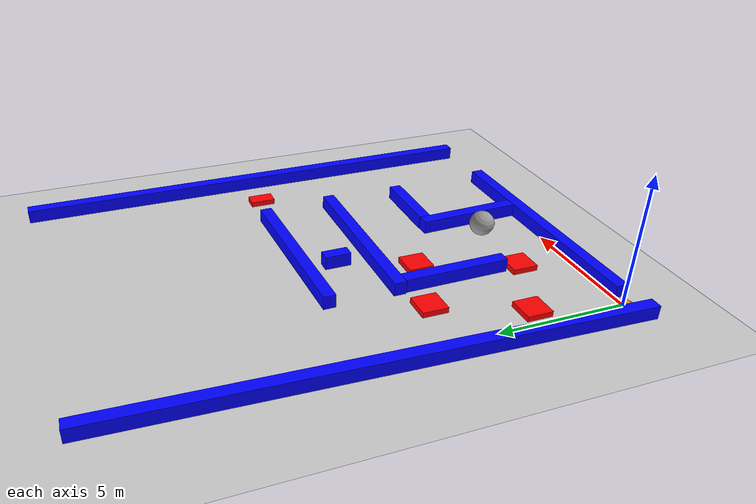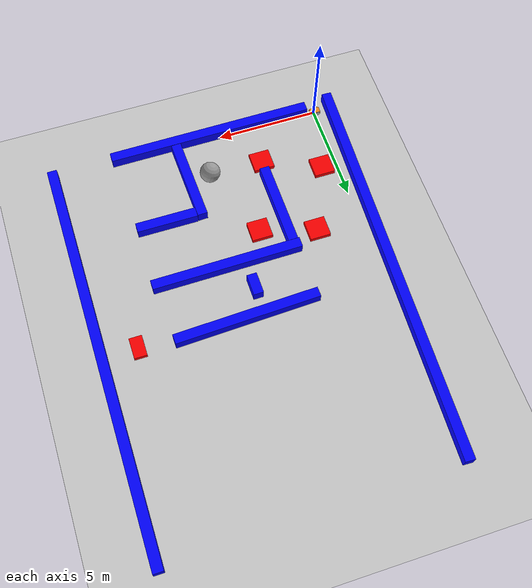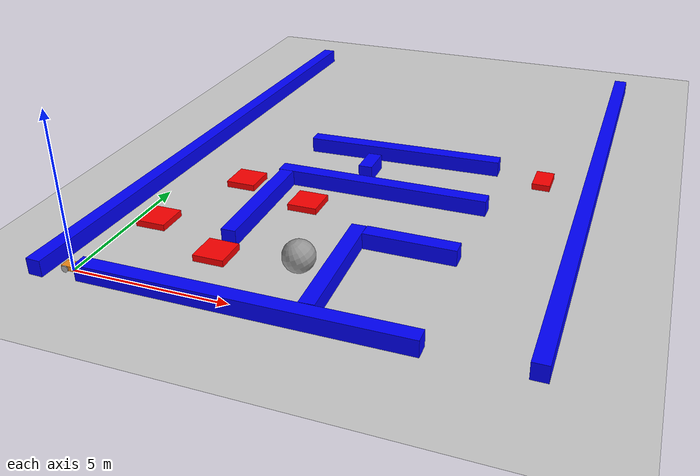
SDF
<sdf version="1.7">
 <world name="default">
  <model name="ground_plane">
   <static>1</static>
   <link name="link">
    <collision name="collision">
     <geometry><plane><normal>0 0 1</normal><size>100 100</size></plane></geometry>
     <surface>
      <contact><collide_bitmask>65535</collide_bitmask></contact>
      <friction><ode><mu>100</mu><mu2>50</mu2></ode></friction>
     </surface>
    </collision>
    <visual name="visual">
     <cast_shadows>0</cast_shadows>
     <geometry><plane><normal>0 0 1</normal><size>100 100</size></plane></geometry>
     <material>
      <script><uri>file://media/materials/scripts/gazebo.material</uri><name>Gazebo/Grey</name></script>
     </material>
    </visual>
   </link>
  </model>
  <model name="blue__wall">
   <link name="link_0">
    <inertial>
     <mass>3.38479</mass>
     <inertia><ixx>51.2617</ixx><ixy>0</ixy><ixz>0</ixz><iyy>0.142515</iyy><iyz>0</iyz><izz>51.2469</izz></inertia>
    </inertial>
    <visual name="visual">
     <geometry><box><size>0.47589 19.6362 0.528001</size></box></geometry>
     <material>
      <lighting>1</lighting>
      <script><uri>file://media/materials/scripts/gazebo.material</uri><name>Gazebo/Grey</name></script>
      <shader type="pixel"><normal_map>__default__</normal_map></shader>
      <ambient>0 0 1 0</ambient>
      <diffuse>0.7 0.7 0.7 1</diffuse>
      <specular>0.01 0.01 0.01 1</specular>
      <emissive>0 0 0 1</emissive>
     </material>
    </visual>
    <collision name="collision">
     <geometry><box><size>0.47589 19.6362 0.528001</size></box></geometry>
     <surface>
      <friction>
       <ode><mu>1</mu><mu2>1</mu2><fdir1>0 0 0</fdir1><slip1>0</slip1><slip2>0</slip2></ode>
       <torsional>
        <coefficient>1</coefficient>
        <patch_radius>0</patch_radius>
        <surface_radius>0</surface_radius>
        <use_patch_radius>1</use_patch_radius>
        <ode><slip>0</slip></ode>
       </torsional>
      </friction>
      <bounce><restitution_coefficient>0</restitution_coefficient><threshold>1e+06</threshold></bounce>
      <contact>
       <collide_without_contact>0</collide_without_contact>
       <collide_without_contact_bitmask>1</collide_without_contact_bitmask>
       <collide_bitmask>1</collide_bitmask>
       <ode>
        <soft_cfm>0</soft_cfm>
        <soft_erp>0.2</soft_erp>
        <kp>1e+13</kp>
        <kd>1</kd>
        <max_vel>0.01</max_vel>
        <min_depth>0</min_depth>
       </ode>
       <bullet>
        <split_impulse>1</split_impulse>
        <split_impulse_penetration_threshold>-0.01</split_impulse_penetration_threshold>
        <soft_cfm>0</soft_cfm>
        <soft_erp>0.2</soft_erp>
        <kp>1e+13</kp>
        <kd>1</kd>
       </bullet>
      </contact>
     </surface>
    </collision>
   </link>
   <static>0</static>
   <pose>-0.4804 9.22676 0.263996 0 -1.8e-05 -0.038056</pose>
  </model>
  <model name="blue__wall_clone_clone_clone">
   <link name="link_0">
    <inertial>
     <mass>3.38479</mass>
     <inertia><ixx>51.2617</ixx><ixy>0</ixy><ixz>0</ixz><iyy>0.142515</iyy><iyz>0</iyz><izz>51.2469</izz></inertia>
    </inertial>
    <visual name="visual">
     <geometry><box><size>0.47589 10.1039 0.528001</size></box></geometry>
     <material>
      <lighting>1</lighting>
      <script><uri>file://media/materials/scripts/gazebo.material</uri><name>Gazebo/Grey</name></script>
      <shader type="pixel"><normal_map>__default__</normal_map></shader>
      <ambient>0 0 1 0</ambient>
      <diffuse>0.7 0.7 0.7 1</diffuse>
      <specular>0.01 0.01 0.01 1</specular>
      <emissive>0 0 0 1</emissive>
     </material>
    </visual>
    <collision name="collision">
     <geometry><box><size>0.47589 10.1039 0.528001</size></box></geometry>
     <surface>
      <friction>
       <ode><mu>1</mu><mu2>1</mu2><fdir1>0 0 0</fdir1><slip1>0</slip1><slip2>0</slip2></ode>
       <torsional>
        <coefficient>1</coefficient>
        <patch_radius>0</patch_radius>
        <surface_radius>0</surface_radius>
        <use_patch_radius>1</use_patch_radius>
        <ode><slip>0</slip></ode>
       </torsional>
      </friction>
      <bounce><restitution_coefficient>0</restitution_coefficient><threshold>1e+06</threshold></bounce>
      <contact>
       <collide_without_contact>0</collide_without_contact>
       <collide_without_contact_bitmask>1</collide_without_contact_bitmask>
       <collide_bitmask>1</collide_bitmask>
       <ode>
        <soft_cfm>0</soft_cfm>
        <soft_erp>0.2</soft_erp>
        <kp>1e+13</kp>
        <kd>1</kd>
        <max_vel>0.01</max_vel>
        <min_depth>0</min_depth>
       </ode>
       <bullet>
        <split_impulse>1</split_impulse>
        <split_impulse_penetration_threshold>-0.01</split_impulse_penetration_threshold>
        <soft_cfm>0</soft_cfm>
        <soft_erp>0.2</soft_erp>
        <kp>1e+13</kp>
        <kd>1</kd>
       </bullet>
      </contact>
     </surface>
    </collision>
   </link>
   <static>0</static>
   <pose>5.44581 -0.183339 0.264 0 -0 1.57294</pose>
  </model>
  <model name="blue__wall_clone_clone_clone_clone_clone">
   <link name="link_0">
    <inertial>
     <mass>3.38479</mass>
     <inertia><ixx>51.2617</ixx><ixy>0</ixy><ixz>0</ixz><iyy>0.142515</iyy><iyz>0</iyz><izz>51.2469</izz></inertia>
    </inertial>
    <visual name="visual">
     <geometry><box><size>0.47589 6.9172 0.528001</size></box></geometry>
     <material>
      <lighting>1</lighting>
      <script><uri>file://media/materials/scripts/gazebo.material</uri><name>Gazebo/Grey</name></script>
      <shader type="pixel"><normal_map>__default__</normal_map></shader>
      <ambient>0 0 1 0</ambient>
      <diffuse>0.7 0.7 0.7 1</diffuse>
      <specular>0.01 0.01 0.01 1</specular>
      <emissive>0 0 0 1</emissive>
     </material>
    </visual>
    <collision name="collision">
     <geometry><box><size>0.47589 6.9172 0.528001</size></box></geometry>
     <surface>
      <friction>
       <ode><mu>1</mu><mu2>1</mu2><fdir1>0 0 0</fdir1><slip1>0</slip1><slip2>0</slip2></ode>
       <torsional>
        <coefficient>1</coefficient>
        <patch_radius>0</patch_radius>
        <surface_radius>0</surface_radius>
        <use_patch_radius>1</use_patch_radius>
        <ode><slip>0</slip></ode>
       </torsional>
      </friction>
      <bounce><restitution_coefficient>0</restitution_coefficient><threshold>1e+06</threshold></bounce>
      <contact>
       <collide_without_contact>0</collide_without_contact>
       <collide_without_contact_bitmask>1</collide_without_contact_bitmask>
       <collide_bitmask>1</collide_bitmask>
       <ode>
        <soft_cfm>0</soft_cfm>
        <soft_erp>0.2</soft_erp>
        <kp>1e+13</kp>
        <kd>1</kd>
        <max_vel>0.01</max_vel>
        <min_depth>0</min_depth>
       </ode>
       <bullet>
        <split_impulse>1</split_impulse>
        <split_impulse_penetration_threshold>-0.01</split_impulse_penetration_threshold>
        <soft_cfm>0</soft_cfm>
        <soft_erp>0.2</soft_erp>
        <kp>1e+13</kp>
        <kd>1</kd>
       </bullet>
      </contact>
     </surface>
    </collision>
   </link>
   <static>0</static>
   <pose>6.70418 9.89001 0.264 0 -0 1.60482</pose>
  </model>
  <model name="blue__wall_clone_clone_clone_clone_clone_clone">
   <link name="link_0">
    <inertial>
     <mass>3.38479</mass>
     <inertia><ixx>51.2617</ixx><ixy>0</ixy><ixz>0</ixz><iyy>0.142515</iyy><iyz>0</iyz><izz>51.2469</izz></inertia>
    </inertial>
    <visual name="visual">
     <geometry><box><size>0.47589 7.22384 0.528001</size></box></geometry>
     <material>
      <lighting>1</lighting>
      <script><uri>file://media/materials/scripts/gazebo.material</uri><name>Gazebo/Grey</name></script>
      <shader type="pixel"><normal_map>__default__</normal_map></shader>
      <ambient>0 0 1 0</ambient>
      <diffuse>0.7 0.7 0.7 1</diffuse>
      <specular>0.01 0.01 0.01 1</specular>
      <emissive>0 0 0 1</emissive>
     </material>
    </visual>
    <collision name="collision">
     <geometry><box><size>0.47589 7.22384 0.528001</size></box></geometry>
     <surface>
      <friction>
       <ode><mu>1</mu><mu2>1</mu2><fdir1>0 0 0</fdir1><slip1>0</slip1><slip2>0</slip2></ode>
       <torsional>
        <coefficient>1</coefficient>
        <patch_radius>0</patch_radius>
        <surface_radius>0</surface_radius>
        <use_patch_radius>1</use_patch_radius>
        <ode><slip>0</slip></ode>
       </torsional>
      </friction>
      <bounce><restitution_coefficient>0</restitution_coefficient><threshold>1e+06</threshold></bounce>
      <contact>
       <collide_without_contact>0</collide_without_contact>
       <collide_without_contact_bitmask>1</collide_without_contact_bitmask>
       <collide_bitmask>1</collide_bitmask>
       <ode>
        <soft_cfm>0</soft_cfm>
        <soft_erp>0.2</soft_erp>
        <kp>1e+13</kp>
        <kd>1</kd>
        <max_vel>0.01</max_vel>
        <min_depth>0</min_depth>
       </ode>
       <bullet>
        <split_impulse>1</split_impulse>
        <split_impulse_penetration_threshold>-0.01</split_impulse_penetration_threshold>
        <soft_cfm>0</soft_cfm>
        <soft_erp>0.2</soft_erp>
        <kp>1e+13</kp>
        <kd>1</kd>
       </bullet>
      </contact>
     </surface>
    </collision>
   </link>
   <static>0</static>
   <pose>6.79896 7.11272 0.264 0 -0 1.57503</pose>
  </model>
  <model name="blue__wall_clone_clone_clone_clone_clone_clone_clone">
   <link name="link_0">
    <inertial>
     <mass>3.38479</mass>
     <inertia><ixx>51.2617</ixx><ixy>0</ixy><ixz>0</ixz><iyy>0.142515</iyy><iyz>0</iyz><izz>51.2469</izz></inertia>
    </inertial>
    <visual name="visual">
     <geometry><box><size>0.47589 4.18247 0.528001</size></box></geometry>
     <material>
      <lighting>1</lighting>
      <script><uri>file://media/materials/scripts/gazebo.material</uri><name>Gazebo/Grey</name></script>
      <shader type="pixel"><normal_map>__default__</normal_map></shader>
      <ambient>0 0 1 0</ambient>
      <diffuse>0.7 0.7 0.7 1</diffuse>
      <specular>0.01 0.01 0.01 1</specular>
      <emissive>0 0 0 1</emissive>
     </material>
    </visual>
    <collision name="collision">
     <geometry><box><size>0.47589 4.18247 0.528001</size></box></geometry>
     <surface>
      <friction>
       <ode><mu>1</mu><mu2>1</mu2><fdir1>0 0 0</fdir1><slip1>0</slip1><slip2>0</slip2></ode>
       <torsional>
        <coefficient>1</coefficient>
        <patch_radius>0</patch_radius>
        <surface_radius>0</surface_radius>
        <use_patch_radius>1</use_patch_radius>
        <ode><slip>0</slip></ode>
       </torsional>
      </friction>
      <bounce><restitution_coefficient>0</restitution_coefficient><threshold>1e+06</threshold></bounce>
      <contact>
       <collide_without_contact>0</collide_without_contact>
       <collide_without_contact_bitmask>1</collide_without_contact_bitmask>
       <collide_bitmask>1</collide_bitmask>
       <ode>
        <soft_cfm>0</soft_cfm>
        <soft_erp>0.2</soft_erp>
        <kp>1e+13</kp>
        <kd>1</kd>
        <max_vel>0.01</max_vel>
        <min_depth>0</min_depth>
       </ode>
       <bullet>
        <split_impulse>1</split_impulse>
        <split_impulse_penetration_threshold>-0.01</split_impulse_penetration_threshold>
        <soft_cfm>0</soft_cfm>
        <soft_erp>0.2</soft_erp>
        <kp>1e+13</kp>
        <kd>1</kd>
       </bullet>
      </contact>
     </surface>
    </collision>
   </link>
   <static>0</static>
   <pose>3.50966 4.76575 0.264 0 0 -3.13011</pose>
  </model>
  <model name="blue__wall_clone">
   <link name="link_0">
    <inertial>
     <mass>3.38479</mass>
     <inertia><ixx>51.2617</ixx><ixy>0</ixy><ixz>0</ixz><iyy>0.142515</iyy><iyz>0</iyz><izz>51.2469</izz></inertia>
    </inertial>
    <visual name="visual">
     <geometry><box><size>0.47589 19.6362 0.528001</size></box></geometry>
     <material>
      <lighting>1</lighting>
      <script><uri>file://media/materials/scripts/gazebo.material</uri><name>Gazebo/Grey</name></script>
      <shader type="pixel"><normal_map>__default__</normal_map></shader>
      <ambient>0 0 1 0</ambient>
      <diffuse>0.7 0.7 0.7 1</diffuse>
      <specular>0.01 0.01 0.01 1</specular>
      <emissive>0 0 0 1</emissive>
     </material>
    </visual>
    <collision name="collision">
     <geometry><box><size>0.47589 19.6362 0.528001</size></box></geometry>
     <surface>
      <friction>
       <ode><mu>1</mu><mu2>1</mu2><fdir1>0 0 0</fdir1><slip1>0</slip1><slip2>0</slip2></ode>
       <torsional>
        <coefficient>1</coefficient>
        <patch_radius>0</patch_radius>
        <surface_radius>0</surface_radius>
        <use_patch_radius>1</use_patch_radius>
        <ode><slip>0</slip></ode>
       </torsional>
      </friction>
      <bounce><restitution_coefficient>0</restitution_coefficient><threshold>1e+06</threshold></bounce>
      <contact>
       <collide_without_contact>0</collide_without_contact>
       <collide_without_contact_bitmask>1</collide_without_contact_bitmask>
       <collide_bitmask>1</collide_bitmask>
       <ode>
        <soft_cfm>0</soft_cfm>
        <soft_erp>0.2</soft_erp>
        <kp>1e+13</kp>
        <kd>1</kd>
        <max_vel>0.01</max_vel>
        <min_depth>0</min_depth>
       </ode>
       <bullet>
        <split_impulse>1</split_impulse>
        <split_impulse_penetration_threshold>-0.01</split_impulse_penetration_threshold>
        <soft_cfm>0</soft_cfm>
        <soft_erp>0.2</soft_erp>
        <kp>1e+13</kp>
        <kd>1</kd>
       </bullet>
      </contact>
     </surface>
    </collision>
   </link>
   <static>0</static>
   <pose>13.4295 9.53036 0.264001 0 1e-06 0</pose>
  </model>
  <model name="blue__wall_clone_clone_clone_clone_clone_clone_clone_clone">
   <link name="link_0">
    <inertial>
     <mass>3.38479</mass>
     <inertia><ixx>51.2617</ixx><ixy>0</ixy><ixz>0</ixz><iyy>0.142515</iyy><iyz>0</iyz><izz>51.2469</izz></inertia>
    </inertial>
    <visual name="visual">
     <geometry><box><size>0.47589 4.18247 0.528001</size></box></geometry>
     <material>
      <lighting>1</lighting>
      <script><uri>file://media/materials/scripts/gazebo.material</uri><name>Gazebo/Grey</name></script>
      <shader type="pixel"><normal_map>__default__</normal_map></shader>
      <ambient>0 0 1 0</ambient>
      <diffuse>0.7 0.7 0.7 1</diffuse>
      <specular>0.01 0.01 0.01 1</specular>
      <emissive>0 0 0 1</emissive>
     </material>
    </visual>
    <collision name="collision">
     <geometry><box><size>0.47589 4.18247 0.528001</size></box></geometry>
     <surface>
      <friction>
       <ode><mu>1</mu><mu2>1</mu2><fdir1>0 0 0</fdir1><slip1>0</slip1><slip2>0</slip2></ode>
       <torsional>
        <coefficient>1</coefficient>
        <patch_radius>0</patch_radius>
        <surface_radius>0</surface_radius>
        <use_patch_radius>1</use_patch_radius>
        <ode><slip>0</slip></ode>
       </torsional>
      </friction>
      <bounce><restitution_coefficient>0</restitution_coefficient><threshold>1e+06</threshold></bounce>
      <contact>
       <collide_without_contact>0</collide_without_contact>
       <collide_without_contact_bitmask>1</collide_without_contact_bitmask>
       <collide_bitmask>1</collide_bitmask>
       <ode>
        <soft_cfm>0</soft_cfm>
        <soft_erp>0.2</soft_erp>
        <kp>1e+13</kp>
        <kd>1</kd>
        <max_vel>0.01</max_vel>
        <min_depth>0</min_depth>
       </ode>
       <bullet>
        <split_impulse>1</split_impulse>
        <split_impulse_penetration_threshold>-0.01</split_impulse_penetration_threshold>
        <soft_cfm>0</soft_cfm>
        <soft_erp>0.2</soft_erp>
        <kp>1e+13</kp>
        <kd>1</kd>
       </bullet>
      </contact>
     </surface>
    </collision>
   </link>
   <static>0</static>
   <pose>7.20045 2.16332 0.263994 -0 -1.1e-05 -3.10777</pose>
  </model>
  <model name="blue__wall_clone_clone_clone_clone_clone_clone_clone_clone_clone_clone">
   <link name="link_0">
    <inertial>
     <mass>3.38479</mass>
     <inertia><ixx>51.2617</ixx><ixy>0</ixy><ixz>0</ixz><iyy>0.142515</iyy><iyz>0</iyz><izz>51.2469</izz></inertia>
    </inertial>
    <visual name="visual">
     <geometry><box><size>0.47589 2.9259 0.528001</size></box></geometry>
     <material>
      <lighting>1</lighting>
      <script><uri>file://media/materials/scripts/gazebo.material</uri><name>Gazebo/Grey</name></script>
      <shader type="pixel"><normal_map>__default__</normal_map></shader>
      <ambient>0 0 1 0</ambient>
      <diffuse>0.7 0.7 0.7 1</diffuse>
      <specular>0.01 0.01 0.01 1</specular>
      <emissive>0 0 0 1</emissive>
     </material>
    </visual>
    <collision name="collision">
     <geometry><box><size>0.47589 2.9259 0.528001</size></box></geometry>
     <surface>
      <friction>
       <ode><mu>1</mu><mu2>1</mu2><fdir1>0 0 0</fdir1><slip1>0</slip1><slip2>0</slip2></ode>
       <torsional>
        <coefficient>1</coefficient>
        <patch_radius>0</patch_radius>
        <surface_radius>0</surface_radius>
        <use_patch_radius>1</use_patch_radius>
        <ode><slip>0</slip></ode>
       </torsional>
      </friction>
      <bounce><restitution_coefficient>0</restitution_coefficient><threshold>1e+06</threshold></bounce>
      <contact>
       <collide_without_contact>0</collide_without_contact>
       <collide_without_contact_bitmask>1</collide_without_contact_bitmask>
       <collide_bitmask>1</collide_bitmask>
       <ode>
        <soft_cfm>0</soft_cfm>
        <soft_erp>0.2</soft_erp>
        <kp>1e+13</kp>
        <kd>1</kd>
        <max_vel>0.01</max_vel>
        <min_depth>0</min_depth>
       </ode>
       <bullet>
        <split_impulse>1</split_impulse>
        <split_impulse_penetration_threshold>-0.01</split_impulse_penetration_threshold>
        <soft_cfm>0</soft_cfm>
        <soft_erp>0.2</soft_erp>
        <kp>1e+13</kp>
        <kd>1</kd>
       </bullet>
      </contact>
     </surface>
    </collision>
   </link>
   <static>0</static>
   <pose>8.84694 4.03992 0.264001 0 -0 1.5659</pose>
  </model>
  <model name="blue__wall_clone_clone_clone_clone_clone_clone_clone_clone_clone_clone_0">
   <link name="link_0">
    <inertial>
     <mass>3.38479</mass>
     <inertia><ixx>51.2617</ixx><ixy>0</ixy><ixz>0</ixz><iyy>0.142515</iyy><iyz>0</iyz><izz>51.2469</izz></inertia>
    </inertial>
    <visual name="visual">
     <geometry><box><size>0.47589 1.03249 0.528001</size></box></geometry>
     <material>
      <lighting>1</lighting>
      <script><uri>file://media/materials/scripts/gazebo.material</uri><name>Gazebo/Grey</name></script>
      <shader type="pixel"><normal_map>__default__</normal_map></shader>
      <ambient>0 0 1 0</ambient>
      <diffuse>0.7 0.7 0.7 1</diffuse>
      <specular>0.01 0.01 0.01 1</specular>
      <emissive>0 0 0 1</emissive>
     </material>
    </visual>
    <collision name="collision">
     <geometry><box><size>0.47589 1.03249 0.528001</size></box></geometry>
     <surface>
      <friction>
       <ode><mu>1</mu><mu2>1</mu2><fdir1>0 0 0</fdir1><slip1>0</slip1><slip2>0</slip2></ode>
       <torsional>
        <coefficient>1</coefficient>
        <patch_radius>0</patch_radius>
        <surface_radius>0</surface_radius>
        <use_patch_radius>1</use_patch_radius>
        <ode><slip>0</slip></ode>
       </torsional>
      </friction>
      <bounce><restitution_coefficient>0</restitution_coefficient><threshold>1e+06</threshold></bounce>
      <contact>
       <collide_without_contact>0</collide_without_contact>
       <collide_without_contact_bitmask>1</collide_without_contact_bitmask>
       <collide_bitmask>1</collide_bitmask>
       <ode>
        <soft_cfm>0</soft_cfm>
        <soft_erp>0.2</soft_erp>
        <kp>1e+13</kp>
        <kd>1</kd>
        <max_vel>0.01</max_vel>
        <min_depth>0</min_depth>
       </ode>
       <bullet>
        <split_impulse>1</split_impulse>
        <split_impulse_penetration_threshold>-0.01</split_impulse_penetration_threshold>
        <soft_cfm>0</soft_cfm>
        <soft_erp>0.2</soft_erp>
        <kp>1e+13</kp>
        <kd>1</kd>
       </bullet>
      </contact>
     </surface>
    </collision>
   </link>
   <static>0</static>
   <pose>5.89774 8.51162 0.263999 -0 -8e-06 -3.12942</pose>
  </model>
  <model name="red_mines_clone_clone">
   <link name="link_1">
    <inertial>
     <mass>1</mass>
     <inertia>
      <ixx>0.166667</ixx>
      <ixy>0</ixy>
      <ixz>0</ixz>
      <iyy>0.166667</iyy>
      <iyz>0</iyz>
      <izz>0.166667</izz>
     </inertia>
    </inertial>
    <visual name="visual">
     <geometry><box><size>1 1 0.214149</size></box></geometry>
     <material>
      <lighting>1</lighting>
      <script><uri>file://media/materials/scripts/gazebo.material</uri><name>Gazebo/Grey</name></script>
      <shader type="pixel"><normal_map>__default__</normal_map></shader>
      <ambient>1 0 0 0</ambient>
      <diffuse>0.7 0.7 0.7 1</diffuse>
      <specular>0.01 0.01 0.01 1</specular>
      <emissive>0 0 0 1</emissive>
     </material>
    </visual>
    <collision name="collision">
     <geometry><box><size>1 1 0.214149</size></box></geometry>
     <surface>
      <friction>
       <ode><mu>1</mu><mu2>1</mu2><fdir1>0 0 0</fdir1><slip1>0</slip1><slip2>0</slip2></ode>
       <torsional>
        <coefficient>1</coefficient>
        <patch_radius>0</patch_radius>
        <surface_radius>0</surface_radius>
        <use_patch_radius>1</use_patch_radius>
        <ode><slip>0</slip></ode>
       </torsional>
      </friction>
      <bounce><restitution_coefficient>0</restitution_coefficient><threshold>1e+06</threshold></bounce>
      <contact>
       <collide_without_contact>0</collide_without_contact>
       <collide_without_contact_bitmask>1</collide_without_contact_bitmask>
       <collide_bitmask>1</collide_bitmask>
       <ode>
        <soft_cfm>0</soft_cfm>
        <soft_erp>0.2</soft_erp>
        <kp>1e+13</kp>
        <kd>1</kd>
        <max_vel>0.01</max_vel>
        <min_depth>0</min_depth>
       </ode>
       <bullet>
        <split_impulse>1</split_impulse>
        <split_impulse_penetration_threshold>-0.01</split_impulse_penetration_threshold>
        <soft_cfm>0</soft_cfm>
        <soft_erp>0.2</soft_erp>
        <kp>1e+13</kp>
        <kd>1</kd>
       </bullet>
      </contact>
     </surface>
    </collision>
   </link>
   <static>0</static>
   <pose>4.76211 5.70404 0.107074 0 -0 0</pose>
  </model>
  <model name="red_mines_clone_clone_0_clone_0">
   <link name="link_1">
    <inertial>
     <mass>1</mass>
     <inertia>
      <ixx>0.166667</ixx>
      <ixy>0</ixy>
      <ixz>0</ixz>
      <iyy>0.166667</iyy>
      <iyz>0</iyz>
      <izz>0.166667</izz>
     </inertia>
    </inertial>
    <visual name="visual">
     <geometry><box><size>0.602905 1 0.214149</size></box></geometry>
     <material>
      <lighting>1</lighting>
      <script><uri>file://media/materials/scripts/gazebo.material</uri><name>Gazebo/Grey</name></script>
      <shader type="pixel"><normal_map>__default__</normal_map></shader>
      <ambient>1 0 0 0</ambient>
      <diffuse>0.7 0.7 0.7 1</diffuse>
      <specular>0.01 0.01 0.01 1</specular>
      <emissive>0 0 0 1</emissive>
     </material>
    </visual>
    <collision name="collision">
     <geometry><box><size>0.602905 1 0.214149</size></box></geometry>
     <surface>
      <friction>
       <ode><mu>1</mu><mu2>1</mu2><fdir1>0 0 0</fdir1><slip1>0</slip1><slip2>0</slip2></ode>
       <torsional>
        <coefficient>1</coefficient>
        <patch_radius>0</patch_radius>
        <surface_radius>0</surface_radius>
        <use_patch_radius>1</use_patch_radius>
        <ode><slip>0</slip></ode>
       </torsional>
      </friction>
      <bounce><restitution_coefficient>0</restitution_coefficient><threshold>1e+06</threshold></bounce>
      <contact>
       <collide_without_contact>0</collide_without_contact>
       <collide_without_contact_bitmask>1</collide_without_contact_bitmask>
       <collide_bitmask>1</collide_bitmask>
       <ode>
        <soft_cfm>0</soft_cfm>
        <soft_erp>0.2</soft_erp>
        <kp>1e+13</kp>
        <kd>1</kd>
        <max_vel>0.01</max_vel>
        <min_depth>0</min_depth>
       </ode>
       <bullet>
        <split_impulse>1</split_impulse>
        <split_impulse_penetration_threshold>-0.01</split_impulse_penetration_threshold>
        <soft_cfm>0</soft_cfm>
        <soft_erp>0.2</soft_erp>
        <kp>1e+13</kp>
        <kd>1</kd>
       </bullet>
      </contact>
     </surface>
    </collision>
   </link>
   <static>0</static>
   <pose>11.7691 9.73126 0.107074 0 -0 0</pose>
  </model>
  <model name="red_mines_clone_clone_clone_clone">
   <link name="link_1">
    <inertial>
     <mass>1</mass>
     <inertia>
      <ixx>0.166667</ixx>
      <ixy>0</ixy>
      <ixz>0</ixz>
      <iyy>0.166667</iyy>
      <iyz>0</iyz>
      <izz>0.166667</izz>
     </inertia>
    </inertial>
    <visual name="visual">
     <geometry><box><size>1 1 0.214149</size></box></geometry>
     <material>
      <lighting>1</lighting>
      <script><uri>file://media/materials/scripts/gazebo.material</uri><name>Gazebo/Grey</name></script>
      <shader type="pixel"><normal_map>__default__</normal_map></shader>
      <ambient>1 0 0 0</ambient>
      <diffuse>0.7 0.7 0.7 1</diffuse>
      <specular>0.01 0.01 0.01 1</specular>
      <emissive>0 0 0 1</emissive>
     </material>
    </visual>
    <collision name="collision">
     <geometry><box><size>1 1 0.214149</size></box></geometry>
     <surface>
      <friction>
       <ode><mu>1</mu><mu2>1</mu2><fdir1>0 0 0</fdir1><slip1>0</slip1><slip2>0</slip2></ode>
       <torsional>
        <coefficient>1</coefficient>
        <patch_radius>0</patch_radius>
        <surface_radius>0</surface_radius>
        <use_patch_radius>1</use_patch_radius>
        <ode><slip>0</slip></ode>
       </torsional>
      </friction>
      <bounce><restitution_coefficient>0</restitution_coefficient><threshold>1e+06</threshold></bounce>
      <contact>
       <collide_without_contact>0</collide_without_contact>
       <collide_without_contact_bitmask>1</collide_without_contact_bitmask>
       <collide_bitmask>1</collide_bitmask>
       <ode>
        <soft_cfm>0</soft_cfm>
        <soft_erp>0.2</soft_erp>
        <kp>1e+13</kp>
        <kd>1</kd>
        <max_vel>0.01</max_vel>
        <min_depth>0</min_depth>
       </ode>
       <bullet>
        <split_impulse>1</split_impulse>
        <split_impulse_penetration_threshold>-0.01</split_impulse_penetration_threshold>
        <soft_cfm>0</soft_cfm>
        <soft_erp>0.2</soft_erp>
        <kp>1e+13</kp>
        <kd>1</kd>
       </bullet>
      </contact>
     </surface>
    </collision>
   </link>
   <static>0</static>
   <pose>3.46309 2.04332 0.107074 0 -0 0</pose>
  </model>
  <model name="red_mines_clone_clone_clone_clone_0">
   <link name="link_1">
    <inertial>
     <mass>1</mass>
     <inertia>
      <ixx>0.166667</ixx>
      <ixy>0</ixy>
      <ixz>0</ixz>
      <iyy>0.166667</iyy>
      <iyz>0</iyz>
      <izz>0.166667</izz>
     </inertia>
    </inertial>
    <visual name="visual">
     <geometry><box><size>1 1 0.214149</size></box></geometry>
     <material>
      <lighting>1</lighting>
      <script><uri>file://media/materials/scripts/gazebo.material</uri><name>Gazebo/Grey</name></script>
      <shader type="pixel"><normal_map>__default__</normal_map></shader>
      <ambient>1 0 0 0</ambient>
      <diffuse>0.7 0.7 0.7 1</diffuse>
      <specular>0.01 0.01 0.01 1</specular>
      <emissive>0 0 0 1</emissive>
     </material>
    </visual>
    <collision name="collision">
     <geometry><box><size>1 1 0.214149</size></box></geometry>
     <surface>
      <friction>
       <ode><mu>1</mu><mu2>1</mu2><fdir1>0 0 0</fdir1><slip1>0</slip1><slip2>0</slip2></ode>
       <torsional>
        <coefficient>1</coefficient>
        <patch_radius>0</patch_radius>
        <surface_radius>0</surface_radius>
        <use_patch_radius>1</use_patch_radius>
        <ode><slip>0</slip></ode>
       </torsional>
      </friction>
      <bounce><restitution_coefficient>0</restitution_coefficient><threshold>1e+06</threshold></bounce>
      <contact>
       <collide_without_contact>0</collide_without_contact>
       <collide_without_contact_bitmask>1</collide_without_contact_bitmask>
       <collide_bitmask>1</collide_bitmask>
       <ode>
        <soft_cfm>0</soft_cfm>
        <soft_erp>0.2</soft_erp>
        <kp>1e+13</kp>
        <kd>1</kd>
        <max_vel>0.01</max_vel>
        <min_depth>0</min_depth>
       </ode>
       <bullet>
        <split_impulse>1</split_impulse>
        <split_impulse_penetration_threshold>-0.01</split_impulse_penetration_threshold>
        <soft_cfm>0</soft_cfm>
        <soft_erp>0.2</soft_erp>
        <kp>1e+13</kp>
        <kd>1</kd>
       </bullet>
      </contact>
     </surface>
    </collision>
   </link>
   <static>0</static>
   <pose>0.732991 3.2216 0.107074 0 -0 0</pose>
  </model>
  <model name="red_mines_clone_clone_clone_clone_1">
   <link name="link_1">
    <inertial>
     <mass>1</mass>
     <inertia>
      <ixx>0.166667</ixx>
      <ixy>0</ixy>
      <ixz>0</ixz>
      <iyy>0.166667</iyy>
      <iyz>0</iyz>
      <izz>0.166667</izz>
     </inertia>
    </inertial>
    <visual name="visual">
     <geometry><box><size>1 1 0.214149</size></box></geometry>
     <material>
      <lighting>1</lighting>
      <script><uri>file://media/materials/scripts/gazebo.material</uri><name>Gazebo/Grey</name></script>
      <shader type="pixel"><normal_map>__default__</normal_map></shader>
      <ambient>1 0 0 0</ambient>
      <diffuse>0.7 0.7 0.7 1</diffuse>
      <specular>0.01 0.01 0.01 1</specular>
      <emissive>0 0 0 1</emissive>
     </material>
    </visual>
    <collision name="collision">
     <geometry><box><size>1 1 0.214149</size></box></geometry>
     <surface>
      <friction>
       <ode><mu>1</mu><mu2>1</mu2><fdir1>0 0 0</fdir1><slip1>0</slip1><slip2>0</slip2></ode>
       <torsional>
        <coefficient>1</coefficient>
        <patch_radius>0</patch_radius>
        <surface_radius>0</surface_radius>
        <use_patch_radius>1</use_patch_radius>
        <ode><slip>0</slip></ode>
       </torsional>
      </friction>
      <bounce><restitution_coefficient>0</restitution_coefficient><threshold>1e+06</threshold></bounce>
      <contact>
       <collide_without_contact>0</collide_without_contact>
       <collide_without_contact_bitmask>1</collide_without_contact_bitmask>
       <collide_bitmask>1</collide_bitmask>
       <ode>
        <soft_cfm>0</soft_cfm>
        <soft_erp>0.2</soft_erp>
        <kp>1e+13</kp>
        <kd>1</kd>
        <max_vel>0.01</max_vel>
        <min_depth>0</min_depth>
       </ode>
       <bullet>
        <split_impulse>1</split_impulse>
        <split_impulse_penetration_threshold>-0.01</split_impulse_penetration_threshold>
        <soft_cfm>0</soft_cfm>
        <soft_erp>0.2</soft_erp>
        <kp>1e+13</kp>
        <kd>1</kd>
       </bullet>
      </contact>
     </surface>
    </collision>
   </link>
   <static>0</static>
   <pose>2.13669 6.48173 0.107074 0 -0 0</pose>
  </model>
  <model name="robot_car">
   <link name="base_link">
    <inertial>
     <mass>10</mass>
     <inertia>
      <ixx>0.09375</ixx>
      <ixy>0</ixy>
      <ixz>0</ixz>
      <iyy>0.227083</iyy>
      <iyz>0</iyz>
      <izz>0.227083</izz>
     </inertia>
    </inertial>
    <collision name="base_link_fixed_joint_lump__collision_collision">
     <geometry><box><size>0.5 0.3 0.15</size></box></geometry>
    </collision>
    <collision name="base_link_fixed_joint_lump__caster_collision_collision_1">
     <pose>0.19625 0 -0.075 0 -0 0</pose>
     <geometry><sphere><radius>0.05375</radius></sphere></geometry>
    </collision>
    <visual name="base_link_visual_visual">
     <geometry><box><size>0.5 0.3 0.15</size></box></geometry>
     <material>
      <script><name>Gazebo/Orange</name><uri>file://media/materials/scripts/gazebo.material</uri></script>
     </material>
    </visual>
    <visual name="base_link_fixed_joint_lump__caster_visual_visual_1">
     <pose>0.19625 0 -0.075 0 -0 0</pose>
     <geometry><sphere><radius>0.05375</radius></sphere></geometry>
    </visual>
   </link>
   <joint name="left_wheel_hinge" type="revolute">
    <pose relative_to="base_link">-0.125 0.165 -0.02125 0 -0 0</pose>
    <parent>base_link</parent>
    <child>left_wheel</child>
    <axis>
     <xyz>0 1 0</xyz>
     <limit><effort>100</effort><velocity>100</velocity><lower>-1e+16</lower><upper>1e+16</upper></limit>
     <dynamics><spring_reference>0</spring_reference><spring_stiffness>0</spring_stiffness></dynamics>
    </axis>
   </joint>
   <link name="left_wheel">
    <pose relative_to="left_wheel_hinge">0 0 0 0 -0 0</pose>
    <inertial>
     <pose>0 0 0 -0 1.5707 1.5707</pose>
     <mass>3</mass>
     <inertia>
      <ixx>0.00889219</ixx>
      <ixy>0</ixy>
      <ixz>0</ixz>
      <iyy>0.00889219</iyy>
      <iyz>0</iyz>
      <izz>0.0173344</izz>
     </inertia>
    </inertial>
    <collision name="left_wheel_fixed_joint_lump__collision_collision">
     <pose>0 0 0 1.57089 1.57079 -3.14159</pose>
     <geometry><cylinder><length>0.03</length><radius>0.1075</radius></cylinder></geometry>
    </collision>
    <visual name="left_wheel_visual_visual">
     <pose>0 0 0 1.57089 1.57079 -3.14159</pose>
     <geometry><cylinder><length>0.03</length><radius>0.1075</radius></cylinder></geometry>
    </visual>
   </link>
   <joint name="right_wheel_hinge" type="revolute">
    <pose relative_to="base_link">-0.125 -0.165 -0.02125 0 -0 0</pose>
    <parent>base_link</parent>
    <child>right_wheel</child>
    <axis>
     <xyz>0 1 0</xyz>
     <limit><effort>100</effort><velocity>100</velocity><lower>-1e+16</lower><upper>1e+16</upper></limit>
     <dynamics><spring_reference>0</spring_reference><spring_stiffness>0</spring_stiffness></dynamics>
    </axis>
   </joint>
   <link name="right_wheel">
    <pose relative_to="right_wheel_hinge">0 0 0 0 -0 0</pose>
    <inertial>
     <pose>0 0 0 -0 1.5707 1.5707</pose>
     <mass>3</mass>
     <inertia>
      <ixx>0.00889219</ixx>
      <ixy>0</ixy>
      <ixz>0</ixz>
      <iyy>0.00889219</iyy>
      <iyz>0</iyz>
      <izz>0.0173344</izz>
     </inertia>
    </inertial>
    <collision name="right_wheel_fixed_joint_lump__collision_collision">
     <pose>0 0 0 1.57089 1.57079 -3.14159</pose>
     <geometry><cylinder><length>0.03</length><radius>0.1075</radius></cylinder></geometry>
    </collision>
    <visual name="right_wheel_visual_visual">
     <pose>0 0 0 1.57089 1.57079 -3.14159</pose>
     <geometry><cylinder><length>0.03</length><radius>0.1075</radius></cylinder></geometry>
    </visual>
   </link>
   <static>0</static>
   <plugin name="differential_drive_controller" filename="libgazebo_ros_diff_drive.so">
    <alwaysOn>1</alwaysOn>
    <updateRate>20</updateRate>
    <leftJoint>left_wheel_hinge</leftJoint>
    <rightJoint>right_wheel_hinge</rightJoint>
    <wheelSeparation>0.3576</wheelSeparation>
    <wheelDiameter>0.215</wheelDiameter>
    <wheelTorque>10</wheelTorque>
    <commandTopic>cmd_vel</commandTopic>
    <odometryTopic>odom</odometryTopic>
    <odometryFrame>odom_link</odometryFrame>
    <robotBaseFrame>base_link</robotBaseFrame>
    <legacyMode>0</legacyMode>
    <robotNamespace>/</robotNamespace>
   </plugin>
   <pose>-0.041365 0.001847 0.128748 -0 -1.1e-05 0.002046</pose>
  </model>
  <model name="unit_sphere">
   <pose>6.1207 2.1145 0.5 0.103836 -0.379273 0.006341</pose>
   <link name="link">
    <inertial>
     <mass>1</mass>
     <inertia><ixx>0.1</ixx><ixy>0</ixy><ixz>0</ixz><iyy>0.1</iyy><iyz>0</iyz><izz>0.1</izz></inertia>
    </inertial>
    <collision name="collision"><geometry><sphere><radius>0.5</radius></sphere></geometry></collision>
    <visual name="visual">
     <geometry><sphere><radius>0.5</radius></sphere></geometry>
     <material>
      <script><name>Gazebo/Grey</name><uri>file://media/materials/scripts/gazebo.material</uri></script>
     </material>
    </visual>
   </link>
  </model>
 </world>
</sdf>
